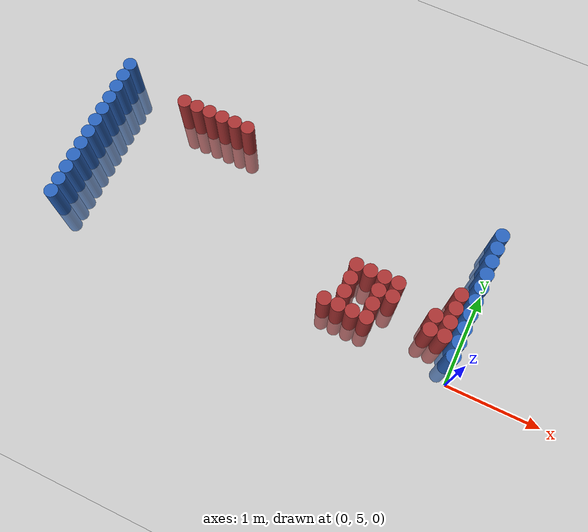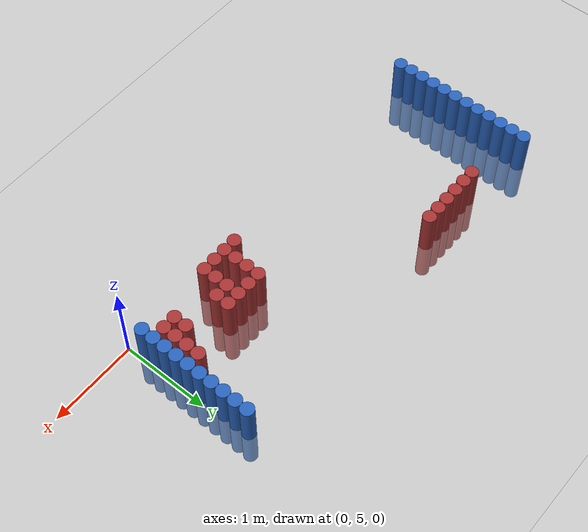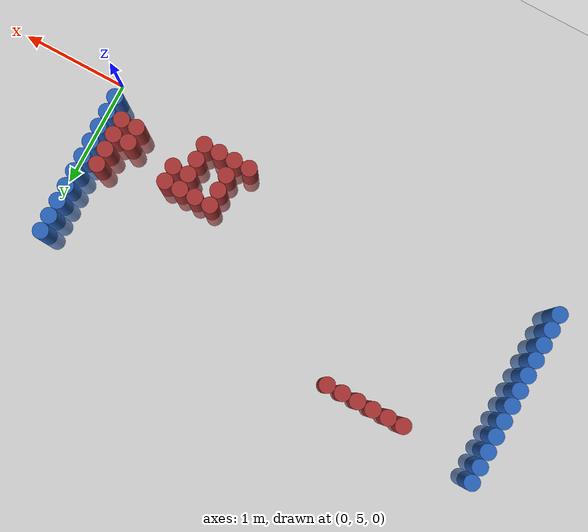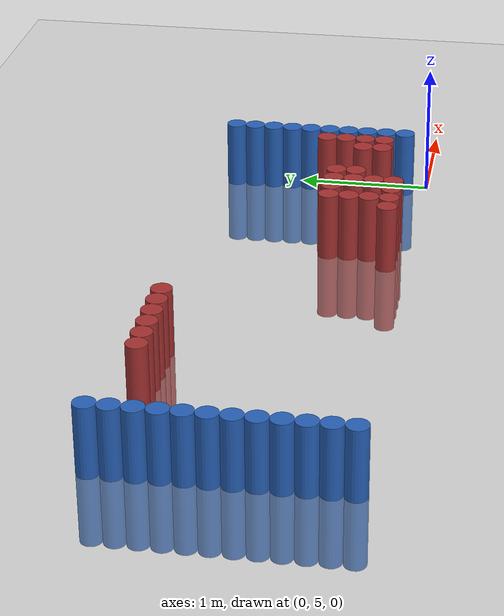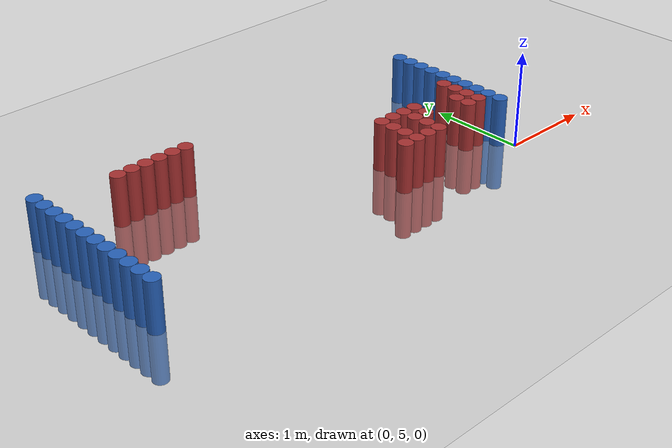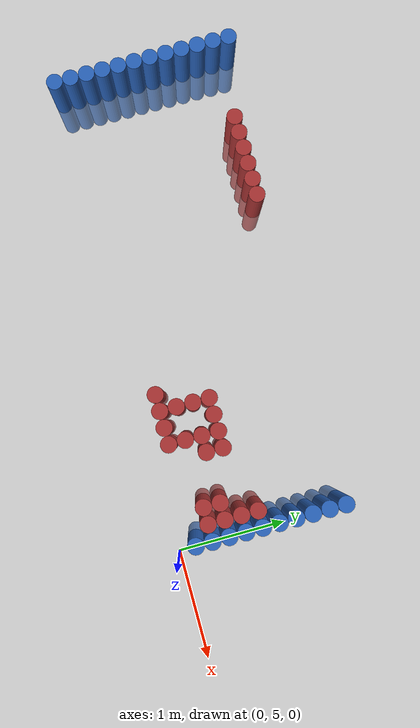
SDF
<sdf version="1.6">
 <world name="default">
  <model name="ground_plane">
   <static>1</static>
   <link name="link">
    <collision name="collision">
     <geometry><plane><normal>0 0 1</normal><size>100 100</size></plane></geometry>
     <surface><friction><ode><mu>100</mu><mu2>50</mu2></ode></friction></surface>
    </collision>
    <visual name="visual">
     <cast_shadows>0</cast_shadows>
     <geometry><plane><normal>0 0 1</normal><size>100 100</size></plane></geometry>
     <material>
      <script><uri>file://media/materials/scripts/gazebo.material</uri><name>Gazebo/Grey</name></script>
     </material>
    </visual>
   </link>
  </model>
  <model name="unit_cylinder_95">
   <static>1</static>
   <pose>-4.425000 5.025000 0.000000 0.000000 0.000000 0.000000</pose>
   <link name="link">
    <inertial>
     <mass>1</mass>
     <inertia><ixx>0.145833</ixx><ixy>0</ixy><ixz>0</ixz><iyy>0.145833</iyy><iyz>0</iyz><izz>0.125</izz></inertia>
    </inertial>
    <collision name="collision">
     <geometry><cylinder><radius>0.075000</radius><length>1</length></cylinder></geometry>
    </collision>
    <visual name="visual">
     <geometry><cylinder><radius>0.075000</radius><length>1</length></cylinder></geometry>
     <material>
      <ambient>0.152000 0.379000 0.720000 1</ambient>
      <diffuse>0.152000 0.379000 0.720000 1</diffuse>
     </material>
     <material>
      <script><name>Gazebo/Grey</name><uri>file://media/materials/scripts/gazebo.material</uri></script>
     </material>
    </visual>
   </link>
  </model>
  <model name="unit_cylinder_96">
   <static>1</static>
   <pose>-4.425000 5.175000 0.000000 0.000000 0.000000 0.000000</pose>
   <link name="link">
    <inertial>
     <mass>1</mass>
     <inertia><ixx>0.145833</ixx><ixy>0</ixy><ixz>0</ixz><iyy>0.145833</iyy><iyz>0</iyz><izz>0.125</izz></inertia>
    </inertial>
    <collision name="collision">
     <geometry><cylinder><radius>0.075000</radius><length>1</length></cylinder></geometry>
    </collision>
    <visual name="visual">
     <geometry><cylinder><radius>0.075000</radius><length>1</length></cylinder></geometry>
     <material>
      <ambient>0.152000 0.379000 0.720000 1</ambient>
      <diffuse>0.152000 0.379000 0.720000 1</diffuse>
     </material>
     <material>
      <script><name>Gazebo/Grey</name><uri>file://media/materials/scripts/gazebo.material</uri></script>
     </material>
    </visual>
   </link>
  </model>
  <model name="unit_cylinder_97">
   <static>1</static>
   <pose>-4.425000 5.325000 0.000000 0.000000 0.000000 0.000000</pose>
   <link name="link">
    <inertial>
     <mass>1</mass>
     <inertia><ixx>0.145833</ixx><ixy>0</ixy><ixz>0</ixz><iyy>0.145833</iyy><iyz>0</iyz><izz>0.125</izz></inertia>
    </inertial>
    <collision name="collision">
     <geometry><cylinder><radius>0.075000</radius><length>1</length></cylinder></geometry>
    </collision>
    <visual name="visual">
     <geometry><cylinder><radius>0.075000</radius><length>1</length></cylinder></geometry>
     <material>
      <ambient>0.152000 0.379000 0.720000 1</ambient>
      <diffuse>0.152000 0.379000 0.720000 1</diffuse>
     </material>
     <material>
      <script><name>Gazebo/Grey</name><uri>file://media/materials/scripts/gazebo.material</uri></script>
     </material>
    </visual>
   </link>
  </model>
  <model name="unit_cylinder_98">
   <static>1</static>
   <pose>-4.425000 5.475000 0.000000 0.000000 0.000000 0.000000</pose>
   <link name="link">
    <inertial>
     <mass>1</mass>
     <inertia><ixx>0.145833</ixx><ixy>0</ixy><ixz>0</ixz><iyy>0.145833</iyy><iyz>0</iyz><izz>0.125</izz></inertia>
    </inertial>
    <collision name="collision">
     <geometry><cylinder><radius>0.075000</radius><length>1</length></cylinder></geometry>
    </collision>
    <visual name="visual">
     <geometry><cylinder><radius>0.075000</radius><length>1</length></cylinder></geometry>
     <material>
      <ambient>0.152000 0.379000 0.720000 1</ambient>
      <diffuse>0.152000 0.379000 0.720000 1</diffuse>
     </material>
     <material>
      <script><name>Gazebo/Grey</name><uri>file://media/materials/scripts/gazebo.material</uri></script>
     </material>
    </visual>
   </link>
  </model>
  <model name="unit_cylinder_99">
   <static>1</static>
   <pose>-4.425000 5.625000 0.000000 0.000000 0.000000 0.000000</pose>
   <link name="link">
    <inertial>
     <mass>1</mass>
     <inertia><ixx>0.145833</ixx><ixy>0</ixy><ixz>0</ixz><iyy>0.145833</iyy><iyz>0</iyz><izz>0.125</izz></inertia>
    </inertial>
    <collision name="collision">
     <geometry><cylinder><radius>0.075000</radius><length>1</length></cylinder></geometry>
    </collision>
    <visual name="visual">
     <geometry><cylinder><radius>0.075000</radius><length>1</length></cylinder></geometry>
     <material>
      <ambient>0.152000 0.379000 0.720000 1</ambient>
      <diffuse>0.152000 0.379000 0.720000 1</diffuse>
     </material>
     <material>
      <script><name>Gazebo/Grey</name><uri>file://media/materials/scripts/gazebo.material</uri></script>
     </material>
    </visual>
   </link>
  </model>
  <model name="unit_cylinder_100">
   <static>1</static>
   <pose>-4.425000 5.775000 0.000000 0.000000 0.000000 0.000000</pose>
   <link name="link">
    <inertial>
     <mass>1</mass>
     <inertia><ixx>0.145833</ixx><ixy>0</ixy><ixz>0</ixz><iyy>0.145833</iyy><iyz>0</iyz><izz>0.125</izz></inertia>
    </inertial>
    <collision name="collision">
     <geometry><cylinder><radius>0.075000</radius><length>1</length></cylinder></geometry>
    </collision>
    <visual name="visual">
     <geometry><cylinder><radius>0.075000</radius><length>1</length></cylinder></geometry>
     <material>
      <ambient>0.152000 0.379000 0.720000 1</ambient>
      <diffuse>0.152000 0.379000 0.720000 1</diffuse>
     </material>
     <material>
      <script><name>Gazebo/Grey</name><uri>file://media/materials/scripts/gazebo.material</uri></script>
     </material>
    </visual>
   </link>
  </model>
  <model name="unit_cylinder_101">
   <static>1</static>
   <pose>-4.425000 5.925000 0.000000 0.000000 0.000000 0.000000</pose>
   <link name="link">
    <inertial>
     <mass>1</mass>
     <inertia><ixx>0.145833</ixx><ixy>0</ixy><ixz>0</ixz><iyy>0.145833</iyy><iyz>0</iyz><izz>0.125</izz></inertia>
    </inertial>
    <collision name="collision">
     <geometry><cylinder><radius>0.075000</radius><length>1</length></cylinder></geometry>
    </collision>
    <visual name="visual">
     <geometry><cylinder><radius>0.075000</radius><length>1</length></cylinder></geometry>
     <material>
      <ambient>0.152000 0.379000 0.720000 1</ambient>
      <diffuse>0.152000 0.379000 0.720000 1</diffuse>
     </material>
     <material>
      <script><name>Gazebo/Grey</name><uri>file://media/materials/scripts/gazebo.material</uri></script>
     </material>
    </visual>
   </link>
  </model>
  <model name="unit_cylinder_102">
   <static>1</static>
   <pose>-4.425000 6.075000 0.000000 0.000000 0.000000 0.000000</pose>
   <link name="link">
    <inertial>
     <mass>1</mass>
     <inertia><ixx>0.145833</ixx><ixy>0</ixy><ixz>0</ixz><iyy>0.145833</iyy><iyz>0</iyz><izz>0.125</izz></inertia>
    </inertial>
    <collision name="collision">
     <geometry><cylinder><radius>0.075000</radius><length>1</length></cylinder></geometry>
    </collision>
    <visual name="visual">
     <geometry><cylinder><radius>0.075000</radius><length>1</length></cylinder></geometry>
     <material>
      <ambient>0.152000 0.379000 0.720000 1</ambient>
      <diffuse>0.152000 0.379000 0.720000 1</diffuse>
     </material>
     <material>
      <script><name>Gazebo/Grey</name><uri>file://media/materials/scripts/gazebo.material</uri></script>
     </material>
    </visual>
   </link>
  </model>
  <model name="unit_cylinder_103">
   <static>1</static>
   <pose>-4.425000 6.225000 0.000000 0.000000 0.000000 0.000000</pose>
   <link name="link">
    <inertial>
     <mass>1</mass>
     <inertia><ixx>0.145833</ixx><ixy>0</ixy><ixz>0</ixz><iyy>0.145833</iyy><iyz>0</iyz><izz>0.125</izz></inertia>
    </inertial>
    <collision name="collision">
     <geometry><cylinder><radius>0.075000</radius><length>1</length></cylinder></geometry>
    </collision>
    <visual name="visual">
     <geometry><cylinder><radius>0.075000</radius><length>1</length></cylinder></geometry>
     <material>
      <ambient>0.152000 0.379000 0.720000 1</ambient>
      <diffuse>0.152000 0.379000 0.720000 1</diffuse>
     </material>
     <material>
      <script><name>Gazebo/Grey</name><uri>file://media/materials/scripts/gazebo.material</uri></script>
     </material>
    </visual>
   </link>
  </model>
  <model name="unit_cylinder_104">
   <static>1</static>
   <pose>-4.425000 6.375000 0.000000 0.000000 0.000000 0.000000</pose>
   <link name="link">
    <inertial>
     <mass>1</mass>
     <inertia><ixx>0.145833</ixx><ixy>0</ixy><ixz>0</ixz><iyy>0.145833</iyy><iyz>0</iyz><izz>0.125</izz></inertia>
    </inertial>
    <collision name="collision">
     <geometry><cylinder><radius>0.075000</radius><length>1</length></cylinder></geometry>
    </collision>
    <visual name="visual">
     <geometry><cylinder><radius>0.075000</radius><length>1</length></cylinder></geometry>
     <material>
      <ambient>0.152000 0.379000 0.720000 1</ambient>
      <diffuse>0.152000 0.379000 0.720000 1</diffuse>
     </material>
     <material>
      <script><name>Gazebo/Grey</name><uri>file://media/materials/scripts/gazebo.material</uri></script>
     </material>
    </visual>
   </link>
  </model>
  <model name="unit_cylinder_105">
   <static>1</static>
   <pose>-4.425000 6.525000 0.000000 0.000000 0.000000 0.000000</pose>
   <link name="link">
    <inertial>
     <mass>1</mass>
     <inertia><ixx>0.145833</ixx><ixy>0</ixy><ixz>0</ixz><iyy>0.145833</iyy><iyz>0</iyz><izz>0.125</izz></inertia>
    </inertial>
    <collision name="collision">
     <geometry><cylinder><radius>0.075000</radius><length>1</length></cylinder></geometry>
    </collision>
    <visual name="visual">
     <geometry><cylinder><radius>0.075000</radius><length>1</length></cylinder></geometry>
     <material>
      <ambient>0.152000 0.379000 0.720000 1</ambient>
      <diffuse>0.152000 0.379000 0.720000 1</diffuse>
     </material>
     <material>
      <script><name>Gazebo/Grey</name><uri>file://media/materials/scripts/gazebo.material</uri></script>
     </material>
    </visual>
   </link>
  </model>
  <model name="unit_cylinder_106">
   <static>1</static>
   <pose>-4.425000 6.675000 0.000000 0.000000 0.000000 0.000000</pose>
   <link name="link">
    <inertial>
     <mass>1</mass>
     <inertia><ixx>0.145833</ixx><ixy>0</ixy><ixz>0</ixz><iyy>0.145833</iyy><iyz>0</iyz><izz>0.125</izz></inertia>
    </inertial>
    <collision name="collision">
     <geometry><cylinder><radius>0.075000</radius><length>1</length></cylinder></geometry>
    </collision>
    <visual name="visual">
     <geometry><cylinder><radius>0.075000</radius><length>1</length></cylinder></geometry>
     <material>
      <ambient>0.152000 0.379000 0.720000 1</ambient>
      <diffuse>0.152000 0.379000 0.720000 1</diffuse>
     </material>
     <material>
      <script><name>Gazebo/Grey</name><uri>file://media/materials/scripts/gazebo.material</uri></script>
     </material>
    </visual>
   </link>
  </model>
  <model name="unit_cylinder_153">
   <static>1</static>
   <pose>-3.675000 6.525000 0.000000 0.000000 0.000000 0.000000</pose>
   <link name="link">
    <inertial>
     <mass>1</mass>
     <inertia><ixx>0.145833</ixx><ixy>0</ixy><ixz>0</ixz><iyy>0.145833</iyy><iyz>0</iyz><izz>0.125</izz></inertia>
    </inertial>
    <collision name="collision">
     <geometry><cylinder><radius>0.075000</radius><length>1</length></cylinder></geometry>
    </collision>
    <visual name="visual">
     <geometry><cylinder><radius>0.075000</radius><length>1</length></cylinder></geometry>
     <material>
      <ambient>0.648000 0.192000 0.192000 1</ambient>
      <diffuse>0.648000 0.192000 0.192000 1</diffuse>
     </material>
     <material>
      <script><name>Gazebo/Grey</name><uri>file://media/materials/scripts/gazebo.material</uri></script>
     </material>
    </visual>
   </link>
  </model>
  <model name="unit_cylinder_157">
   <static>1</static>
   <pose>-3.525000 6.525000 0.000000 0.000000 0.000000 0.000000</pose>
   <link name="link">
    <inertial>
     <mass>1</mass>
     <inertia><ixx>0.145833</ixx><ixy>0</ixy><ixz>0</ixz><iyy>0.145833</iyy><iyz>0</iyz><izz>0.125</izz></inertia>
    </inertial>
    <collision name="collision">
     <geometry><cylinder><radius>0.075000</radius><length>1</length></cylinder></geometry>
    </collision>
    <visual name="visual">
     <geometry><cylinder><radius>0.075000</radius><length>1</length></cylinder></geometry>
     <material>
      <ambient>0.648000 0.192000 0.192000 1</ambient>
      <diffuse>0.648000 0.192000 0.192000 1</diffuse>
     </material>
     <material>
      <script><name>Gazebo/Grey</name><uri>file://media/materials/scripts/gazebo.material</uri></script>
     </material>
    </visual>
   </link>
  </model>
  <model name="unit_cylinder_159">
   <static>1</static>
   <pose>-3.375000 6.525000 0.000000 0.000000 0.000000 0.000000</pose>
   <link name="link">
    <inertial>
     <mass>1</mass>
     <inertia><ixx>0.145833</ixx><ixy>0</ixy><ixz>0</ixz><iyy>0.145833</iyy><iyz>0</iyz><izz>0.125</izz></inertia>
    </inertial>
    <collision name="collision">
     <geometry><cylinder><radius>0.075000</radius><length>1</length></cylinder></geometry>
    </collision>
    <visual name="visual">
     <geometry><cylinder><radius>0.075000</radius><length>1</length></cylinder></geometry>
     <material>
      <ambient>0.648000 0.192000 0.192000 1</ambient>
      <diffuse>0.648000 0.192000 0.192000 1</diffuse>
     </material>
     <material>
      <script><name>Gazebo/Grey</name><uri>file://media/materials/scripts/gazebo.material</uri></script>
     </material>
    </visual>
   </link>
  </model>
  <model name="unit_cylinder_161">
   <static>1</static>
   <pose>-3.225000 6.525000 0.000000 0.000000 0.000000 0.000000</pose>
   <link name="link">
    <inertial>
     <mass>1</mass>
     <inertia><ixx>0.145833</ixx><ixy>0</ixy><ixz>0</ixz><iyy>0.145833</iyy><iyz>0</iyz><izz>0.125</izz></inertia>
    </inertial>
    <collision name="collision">
     <geometry><cylinder><radius>0.075000</radius><length>1</length></cylinder></geometry>
    </collision>
    <visual name="visual">
     <geometry><cylinder><radius>0.075000</radius><length>1</length></cylinder></geometry>
     <material>
      <ambient>0.648000 0.192000 0.192000 1</ambient>
      <diffuse>0.648000 0.192000 0.192000 1</diffuse>
     </material>
     <material>
      <script><name>Gazebo/Grey</name><uri>file://media/materials/scripts/gazebo.material</uri></script>
     </material>
    </visual>
   </link>
  </model>
  <model name="unit_cylinder_163">
   <static>1</static>
   <pose>-3.075000 6.525000 0.000000 0.000000 0.000000 0.000000</pose>
   <link name="link">
    <inertial>
     <mass>1</mass>
     <inertia><ixx>0.145833</ixx><ixy>0</ixy><ixz>0</ixz><iyy>0.145833</iyy><iyz>0</iyz><izz>0.125</izz></inertia>
    </inertial>
    <collision name="collision">
     <geometry><cylinder><radius>0.075000</radius><length>1</length></cylinder></geometry>
    </collision>
    <visual name="visual">
     <geometry><cylinder><radius>0.075000</radius><length>1</length></cylinder></geometry>
     <material>
      <ambient>0.648000 0.192000 0.192000 1</ambient>
      <diffuse>0.648000 0.192000 0.192000 1</diffuse>
     </material>
     <material>
      <script><name>Gazebo/Grey</name><uri>file://media/materials/scripts/gazebo.material</uri></script>
     </material>
    </visual>
   </link>
  </model>
  <model name="unit_cylinder_172">
   <static>1</static>
   <pose>-2.925000 6.525000 0.000000 0.000000 0.000000 0.000000</pose>
   <link name="link">
    <inertial>
     <mass>1</mass>
     <inertia><ixx>0.145833</ixx><ixy>0</ixy><ixz>0</ixz><iyy>0.145833</iyy><iyz>0</iyz><izz>0.125</izz></inertia>
    </inertial>
    <collision name="collision">
     <geometry><cylinder><radius>0.075000</radius><length>1</length></cylinder></geometry>
    </collision>
    <visual name="visual">
     <geometry><cylinder><radius>0.075000</radius><length>1</length></cylinder></geometry>
     <material>
      <ambient>0.648000 0.192000 0.192000 1</ambient>
      <diffuse>0.648000 0.192000 0.192000 1</diffuse>
     </material>
     <material>
      <script><name>Gazebo/Grey</name><uri>file://media/materials/scripts/gazebo.material</uri></script>
     </material>
    </visual>
   </link>
  </model>
  <model name="unit_cylinder_201">
   <static>1</static>
   <pose>-1.425000 5.175000 0.000000 0.000000 0.000000 0.000000</pose>
   <link name="link">
    <inertial>
     <mass>1</mass>
     <inertia><ixx>0.145833</ixx><ixy>0</ixy><ixz>0</ixz><iyy>0.145833</iyy><iyz>0</iyz><izz>0.125</izz></inertia>
    </inertial>
    <collision name="collision">
     <geometry><cylinder><radius>0.075000</radius><length>1</length></cylinder></geometry>
    </collision>
    <visual name="visual">
     <geometry><cylinder><radius>0.075000</radius><length>1</length></cylinder></geometry>
     <material>
      <ambient>0.648000 0.192000 0.192000 1</ambient>
      <diffuse>0.648000 0.192000 0.192000 1</diffuse>
     </material>
     <material>
      <script><name>Gazebo/Grey</name><uri>file://media/materials/scripts/gazebo.material</uri></script>
     </material>
    </visual>
   </link>
  </model>
  <model name="unit_cylinder_203">
   <static>1</static>
   <pose>-1.275000 5.175000 0.000000 0.000000 0.000000 0.000000</pose>
   <link name="link">
    <inertial>
     <mass>1</mass>
     <inertia><ixx>0.145833</ixx><ixy>0</ixy><ixz>0</ixz><iyy>0.145833</iyy><iyz>0</iyz><izz>0.125</izz></inertia>
    </inertial>
    <collision name="collision">
     <geometry><cylinder><radius>0.075000</radius><length>1</length></cylinder></geometry>
    </collision>
    <visual name="visual">
     <geometry><cylinder><radius>0.075000</radius><length>1</length></cylinder></geometry>
     <material>
      <ambient>0.648000 0.192000 0.192000 1</ambient>
      <diffuse>0.648000 0.192000 0.192000 1</diffuse>
     </material>
     <material>
      <script><name>Gazebo/Grey</name><uri>file://media/materials/scripts/gazebo.material</uri></script>
     </material>
    </visual>
   </link>
  </model>
  <model name="unit_cylinder_204">
   <static>1</static>
   <pose>-1.275000 5.325000 0.000000 0.000000 0.000000 0.000000</pose>
   <link name="link">
    <inertial>
     <mass>1</mass>
     <inertia><ixx>0.145833</ixx><ixy>0</ixy><ixz>0</ixz><iyy>0.145833</iyy><iyz>0</iyz><izz>0.125</izz></inertia>
    </inertial>
    <collision name="collision">
     <geometry><cylinder><radius>0.075000</radius><length>1</length></cylinder></geometry>
    </collision>
    <visual name="visual">
     <geometry><cylinder><radius>0.075000</radius><length>1</length></cylinder></geometry>
     <material>
      <ambient>0.648000 0.192000 0.192000 1</ambient>
      <diffuse>0.648000 0.192000 0.192000 1</diffuse>
     </material>
     <material>
      <script><name>Gazebo/Grey</name><uri>file://media/materials/scripts/gazebo.material</uri></script>
     </material>
    </visual>
   </link>
  </model>
  <model name="unit_cylinder_205">
   <static>1</static>
   <pose>-1.275000 5.475000 0.000000 0.000000 0.000000 0.000000</pose>
   <link name="link">
    <inertial>
     <mass>1</mass>
     <inertia><ixx>0.145833</ixx><ixy>0</ixy><ixz>0</ixz><iyy>0.145833</iyy><iyz>0</iyz><izz>0.125</izz></inertia>
    </inertial>
    <collision name="collision">
     <geometry><cylinder><radius>0.075000</radius><length>1</length></cylinder></geometry>
    </collision>
    <visual name="visual">
     <geometry><cylinder><radius>0.075000</radius><length>1</length></cylinder></geometry>
     <material>
      <ambient>0.648000 0.192000 0.192000 1</ambient>
      <diffuse>0.648000 0.192000 0.192000 1</diffuse>
     </material>
     <material>
      <script><name>Gazebo/Grey</name><uri>file://media/materials/scripts/gazebo.material</uri></script>
     </material>
    </visual>
   </link>
  </model>
  <model name="unit_cylinder_206">
   <static>1</static>
   <pose>-1.275000 5.625000 0.000000 0.000000 0.000000 0.000000</pose>
   <link name="link">
    <inertial>
     <mass>1</mass>
     <inertia><ixx>0.145833</ixx><ixy>0</ixy><ixz>0</ixz><iyy>0.145833</iyy><iyz>0</iyz><izz>0.125</izz></inertia>
    </inertial>
    <collision name="collision">
     <geometry><cylinder><radius>0.075000</radius><length>1</length></cylinder></geometry>
    </collision>
    <visual name="visual">
     <geometry><cylinder><radius>0.075000</radius><length>1</length></cylinder></geometry>
     <material>
      <ambient>0.648000 0.192000 0.192000 1</ambient>
      <diffuse>0.648000 0.192000 0.192000 1</diffuse>
     </material>
     <material>
      <script><name>Gazebo/Grey</name><uri>file://media/materials/scripts/gazebo.material</uri></script>
     </material>
    </visual>
   </link>
  </model>
  <model name="unit_cylinder_214">
   <static>1</static>
   <pose>-1.125000 5.175000 0.000000 0.000000 0.000000 0.000000</pose>
   <link name="link">
    <inertial>
     <mass>1</mass>
     <inertia><ixx>0.145833</ixx><ixy>0</ixy><ixz>0</ixz><iyy>0.145833</iyy><iyz>0</iyz><izz>0.125</izz></inertia>
    </inertial>
    <collision name="collision">
     <geometry><cylinder><radius>0.075000</radius><length>1</length></cylinder></geometry>
    </collision>
    <visual name="visual">
     <geometry><cylinder><radius>0.075000</radius><length>1</length></cylinder></geometry>
     <material>
      <ambient>0.648000 0.192000 0.192000 1</ambient>
      <diffuse>0.648000 0.192000 0.192000 1</diffuse>
     </material>
     <material>
      <script><name>Gazebo/Grey</name><uri>file://media/materials/scripts/gazebo.material</uri></script>
     </material>
    </visual>
   </link>
  </model>
  <model name="unit_cylinder_215">
   <static>1</static>
   <pose>-1.125000 5.625000 0.000000 0.000000 0.000000 0.000000</pose>
   <link name="link">
    <inertial>
     <mass>1</mass>
     <inertia><ixx>0.145833</ixx><ixy>0</ixy><ixz>0</ixz><iyy>0.145833</iyy><iyz>0</iyz><izz>0.125</izz></inertia>
    </inertial>
    <collision name="collision">
     <geometry><cylinder><radius>0.075000</radius><length>1</length></cylinder></geometry>
    </collision>
    <visual name="visual">
     <geometry><cylinder><radius>0.075000</radius><length>1</length></cylinder></geometry>
     <material>
      <ambient>0.648000 0.192000 0.192000 1</ambient>
      <diffuse>0.648000 0.192000 0.192000 1</diffuse>
     </material>
     <material>
      <script><name>Gazebo/Grey</name><uri>file://media/materials/scripts/gazebo.material</uri></script>
     </material>
    </visual>
   </link>
  </model>
  <model name="unit_cylinder_219">
   <static>1</static>
   <pose>-0.975000 5.175000 0.000000 0.000000 0.000000 0.000000</pose>
   <link name="link">
    <inertial>
     <mass>1</mass>
     <inertia><ixx>0.145833</ixx><ixy>0</ixy><ixz>0</ixz><iyy>0.145833</iyy><iyz>0</iyz><izz>0.125</izz></inertia>
    </inertial>
    <collision name="collision">
     <geometry><cylinder><radius>0.075000</radius><length>1</length></cylinder></geometry>
    </collision>
    <visual name="visual">
     <geometry><cylinder><radius>0.075000</radius><length>1</length></cylinder></geometry>
     <material>
      <ambient>0.648000 0.192000 0.192000 1</ambient>
      <diffuse>0.648000 0.192000 0.192000 1</diffuse>
     </material>
     <material>
      <script><name>Gazebo/Grey</name><uri>file://media/materials/scripts/gazebo.material</uri></script>
     </material>
    </visual>
   </link>
  </model>
  <model name="unit_cylinder_220">
   <static>1</static>
   <pose>-0.975000 5.325000 0.000000 0.000000 0.000000 0.000000</pose>
   <link name="link">
    <inertial>
     <mass>1</mass>
     <inertia><ixx>0.145833</ixx><ixy>0</ixy><ixz>0</ixz><iyy>0.145833</iyy><iyz>0</iyz><izz>0.125</izz></inertia>
    </inertial>
    <collision name="collision">
     <geometry><cylinder><radius>0.075000</radius><length>1</length></cylinder></geometry>
    </collision>
    <visual name="visual">
     <geometry><cylinder><radius>0.075000</radius><length>1</length></cylinder></geometry>
     <material>
      <ambient>0.648000 0.192000 0.192000 1</ambient>
      <diffuse>0.648000 0.192000 0.192000 1</diffuse>
     </material>
     <material>
      <script><name>Gazebo/Grey</name><uri>file://media/materials/scripts/gazebo.material</uri></script>
     </material>
    </visual>
   </link>
  </model>
  <model name="unit_cylinder_221">
   <static>1</static>
   <pose>-0.975000 5.475000 0.000000 0.000000 0.000000 0.000000</pose>
   <link name="link">
    <inertial>
     <mass>1</mass>
     <inertia><ixx>0.145833</ixx><ixy>0</ixy><ixz>0</ixz><iyy>0.145833</iyy><iyz>0</iyz><izz>0.125</izz></inertia>
    </inertial>
    <collision name="collision">
     <geometry><cylinder><radius>0.075000</radius><length>1</length></cylinder></geometry>
    </collision>
    <visual name="visual">
     <geometry><cylinder><radius>0.075000</radius><length>1</length></cylinder></geometry>
     <material>
      <ambient>0.648000 0.192000 0.192000 1</ambient>
      <diffuse>0.648000 0.192000 0.192000 1</diffuse>
     </material>
     <material>
      <script><name>Gazebo/Grey</name><uri>file://media/materials/scripts/gazebo.material</uri></script>
     </material>
    </visual>
   </link>
  </model>
  <model name="unit_cylinder_222">
   <static>1</static>
   <pose>-0.975000 5.625000 0.000000 0.000000 0.000000 0.000000</pose>
   <link name="link">
    <inertial>
     <mass>1</mass>
     <inertia><ixx>0.145833</ixx><ixy>0</ixy><ixz>0</ixz><iyy>0.145833</iyy><iyz>0</iyz><izz>0.125</izz></inertia>
    </inertial>
    <collision name="collision">
     <geometry><cylinder><radius>0.075000</radius><length>1</length></cylinder></geometry>
    </collision>
    <visual name="visual">
     <geometry><cylinder><radius>0.075000</radius><length>1</length></cylinder></geometry>
     <material>
      <ambient>0.648000 0.192000 0.192000 1</ambient>
      <diffuse>0.648000 0.192000 0.192000 1</diffuse>
     </material>
     <material>
      <script><name>Gazebo/Grey</name><uri>file://media/materials/scripts/gazebo.material</uri></script>
     </material>
    </visual>
   </link>
  </model>
  <model name="unit_cylinder_225">
   <static>1</static>
   <pose>-0.825000 5.475000 0.000000 0.000000 0.000000 0.000000</pose>
   <link name="link">
    <inertial>
     <mass>1</mass>
     <inertia><ixx>0.145833</ixx><ixy>0</ixy><ixz>0</ixz><iyy>0.145833</iyy><iyz>0</iyz><izz>0.125</izz></inertia>
    </inertial>
    <collision name="collision">
     <geometry><cylinder><radius>0.075000</radius><length>1</length></cylinder></geometry>
    </collision>
    <visual name="visual">
     <geometry><cylinder><radius>0.075000</radius><length>1</length></cylinder></geometry>
     <material>
      <ambient>0.648000 0.192000 0.192000 1</ambient>
      <diffuse>0.648000 0.192000 0.192000 1</diffuse>
     </material>
     <material>
      <script><name>Gazebo/Grey</name><uri>file://media/materials/scripts/gazebo.material</uri></script>
     </material>
    </visual>
   </link>
  </model>
  <model name="unit_cylinder_226">
   <static>1</static>
   <pose>-0.825000 5.625000 0.000000 0.000000 0.000000 0.000000</pose>
   <link name="link">
    <inertial>
     <mass>1</mass>
     <inertia><ixx>0.145833</ixx><ixy>0</ixy><ixz>0</ixz><iyy>0.145833</iyy><iyz>0</iyz><izz>0.125</izz></inertia>
    </inertial>
    <collision name="collision">
     <geometry><cylinder><radius>0.075000</radius><length>1</length></cylinder></geometry>
    </collision>
    <visual name="visual">
     <geometry><cylinder><radius>0.075000</radius><length>1</length></cylinder></geometry>
     <material>
      <ambient>0.648000 0.192000 0.192000 1</ambient>
      <diffuse>0.648000 0.192000 0.192000 1</diffuse>
     </material>
     <material>
      <script><name>Gazebo/Grey</name><uri>file://media/materials/scripts/gazebo.material</uri></script>
     </material>
    </visual>
   </link>
  </model>
  <model name="unit_cylinder_235">
   <static>1</static>
   <pose>-0.375000 5.325000 0.000000 0.000000 0.000000 0.000000</pose>
   <link name="link">
    <inertial>
     <mass>1</mass>
     <inertia><ixx>0.145833</ixx><ixy>0</ixy><ixz>0</ixz><iyy>0.145833</iyy><iyz>0</iyz><izz>0.125</izz></inertia>
    </inertial>
    <collision name="collision">
     <geometry><cylinder><radius>0.075000</radius><length>1</length></cylinder></geometry>
    </collision>
    <visual name="visual">
     <geometry><cylinder><radius>0.075000</radius><length>1</length></cylinder></geometry>
     <material>
      <ambient>0.648000 0.192000 0.192000 1</ambient>
      <diffuse>0.648000 0.192000 0.192000 1</diffuse>
     </material>
     <material>
      <script><name>Gazebo/Grey</name><uri>file://media/materials/scripts/gazebo.material</uri></script>
     </material>
    </visual>
   </link>
  </model>
  <model name="unit_cylinder_236">
   <static>1</static>
   <pose>-0.375000 5.475000 0.000000 0.000000 0.000000 0.000000</pose>
   <link name="link">
    <inertial>
     <mass>1</mass>
     <inertia><ixx>0.145833</ixx><ixy>0</ixy><ixz>0</ixz><iyy>0.145833</iyy><iyz>0</iyz><izz>0.125</izz></inertia>
    </inertial>
    <collision name="collision">
     <geometry><cylinder><radius>0.075000</radius><length>1</length></cylinder></geometry>
    </collision>
    <visual name="visual">
     <geometry><cylinder><radius>0.075000</radius><length>1</length></cylinder></geometry>
     <material>
      <ambient>0.648000 0.192000 0.192000 1</ambient>
      <diffuse>0.648000 0.192000 0.192000 1</diffuse>
     </material>
     <material>
      <script><name>Gazebo/Grey</name><uri>file://media/materials/scripts/gazebo.material</uri></script>
     </material>
    </visual>
   </link>
  </model>
  <model name="unit_cylinder_244">
   <static>1</static>
   <pose>-0.225000 5.325000 0.000000 0.000000 0.000000 0.000000</pose>
   <link name="link">
    <inertial>
     <mass>1</mass>
     <inertia><ixx>0.145833</ixx><ixy>0</ixy><ixz>0</ixz><iyy>0.145833</iyy><iyz>0</iyz><izz>0.125</izz></inertia>
    </inertial>
    <collision name="collision">
     <geometry><cylinder><radius>0.075000</radius><length>1</length></cylinder></geometry>
    </collision>
    <visual name="visual">
     <geometry><cylinder><radius>0.075000</radius><length>1</length></cylinder></geometry>
     <material>
      <ambient>0.648000 0.192000 0.192000 1</ambient>
      <diffuse>0.648000 0.192000 0.192000 1</diffuse>
     </material>
     <material>
      <script><name>Gazebo/Grey</name><uri>file://media/materials/scripts/gazebo.material</uri></script>
     </material>
    </visual>
   </link>
  </model>
  <model name="unit_cylinder_245">
   <static>1</static>
   <pose>-0.225000 5.475000 0.000000 0.000000 0.000000 0.000000</pose>
   <link name="link">
    <inertial>
     <mass>1</mass>
     <inertia><ixx>0.145833</ixx><ixy>0</ixy><ixz>0</ixz><iyy>0.145833</iyy><iyz>0</iyz><izz>0.125</izz></inertia>
    </inertial>
    <collision name="collision">
     <geometry><cylinder><radius>0.075000</radius><length>1</length></cylinder></geometry>
    </collision>
    <visual name="visual">
     <geometry><cylinder><radius>0.075000</radius><length>1</length></cylinder></geometry>
     <material>
      <ambient>0.648000 0.192000 0.192000 1</ambient>
      <diffuse>0.648000 0.192000 0.192000 1</diffuse>
     </material>
     <material>
      <script><name>Gazebo/Grey</name><uri>file://media/materials/scripts/gazebo.material</uri></script>
     </material>
    </visual>
   </link>
  </model>
  <model name="unit_cylinder_246">
   <static>1</static>
   <pose>-0.225000 5.625000 0.000000 0.000000 0.000000 0.000000</pose>
   <link name="link">
    <inertial>
     <mass>1</mass>
     <inertia><ixx>0.145833</ixx><ixy>0</ixy><ixz>0</ixz><iyy>0.145833</iyy><iyz>0</iyz><izz>0.125</izz></inertia>
    </inertial>
    <collision name="collision">
     <geometry><cylinder><radius>0.075000</radius><length>1</length></cylinder></geometry>
    </collision>
    <visual name="visual">
     <geometry><cylinder><radius>0.075000</radius><length>1</length></cylinder></geometry>
     <material>
      <ambient>0.648000 0.192000 0.192000 1</ambient>
      <diffuse>0.648000 0.192000 0.192000 1</diffuse>
     </material>
     <material>
      <script><name>Gazebo/Grey</name><uri>file://media/materials/scripts/gazebo.material</uri></script>
     </material>
    </visual>
   </link>
  </model>
  <model name="unit_cylinder_247">
   <static>1</static>
   <pose>-0.225000 5.775000 0.000000 0.000000 0.000000 0.000000</pose>
   <link name="link">
    <inertial>
     <mass>1</mass>
     <inertia><ixx>0.145833</ixx><ixy>0</ixy><ixz>0</ixz><iyy>0.145833</iyy><iyz>0</iyz><izz>0.125</izz></inertia>
    </inertial>
    <collision name="collision">
     <geometry><cylinder><radius>0.075000</radius><length>1</length></cylinder></geometry>
    </collision>
    <visual name="visual">
     <geometry><cylinder><radius>0.075000</radius><length>1</length></cylinder></geometry>
     <material>
      <ambient>0.648000 0.192000 0.192000 1</ambient>
      <diffuse>0.648000 0.192000 0.192000 1</diffuse>
     </material>
     <material>
      <script><name>Gazebo/Grey</name><uri>file://media/materials/scripts/gazebo.material</uri></script>
     </material>
    </visual>
   </link>
  </model>
  <model name="unit_cylinder_254">
   <static>1</static>
   <pose>-0.075000 5.175000 0.000000 0.000000 0.000000 0.000000</pose>
   <link name="link">
    <inertial>
     <mass>1</mass>
     <inertia><ixx>0.145833</ixx><ixy>0</ixy><ixz>0</ixz><iyy>0.145833</iyy><iyz>0</iyz><izz>0.125</izz></inertia>
    </inertial>
    <collision name="collision">
     <geometry><cylinder><radius>0.075000</radius><length>1</length></cylinder></geometry>
    </collision>
    <visual name="visual">
     <geometry><cylinder><radius>0.075000</radius><length>1</length></cylinder></geometry>
     <material>
      <ambient>0.152000 0.379000 0.720000 1</ambient>
      <diffuse>0.152000 0.379000 0.720000 1</diffuse>
     </material>
     <material>
      <script><name>Gazebo/Grey</name><uri>file://media/materials/scripts/gazebo.material</uri></script>
     </material>
    </visual>
   </link>
  </model>
  <model name="unit_cylinder_255">
   <static>1</static>
   <pose>-0.075000 5.325000 0.000000 0.000000 0.000000 0.000000</pose>
   <link name="link">
    <inertial>
     <mass>1</mass>
     <inertia><ixx>0.145833</ixx><ixy>0</ixy><ixz>0</ixz><iyy>0.145833</iyy><iyz>0</iyz><izz>0.125</izz></inertia>
    </inertial>
    <collision name="collision">
     <geometry><cylinder><radius>0.075000</radius><length>1</length></cylinder></geometry>
    </collision>
    <visual name="visual">
     <geometry><cylinder><radius>0.075000</radius><length>1</length></cylinder></geometry>
     <material>
      <ambient>0.152000 0.379000 0.720000 1</ambient>
      <diffuse>0.152000 0.379000 0.720000 1</diffuse>
     </material>
     <material>
      <script><name>Gazebo/Grey</name><uri>file://media/materials/scripts/gazebo.material</uri></script>
     </material>
    </visual>
   </link>
  </model>
  <model name="unit_cylinder_256">
   <static>1</static>
   <pose>-0.075000 5.475000 0.000000 0.000000 0.000000 0.000000</pose>
   <link name="link">
    <inertial>
     <mass>1</mass>
     <inertia><ixx>0.145833</ixx><ixy>0</ixy><ixz>0</ixz><iyy>0.145833</iyy><iyz>0</iyz><izz>0.125</izz></inertia>
    </inertial>
    <collision name="collision">
     <geometry><cylinder><radius>0.075000</radius><length>1</length></cylinder></geometry>
    </collision>
    <visual name="visual">
     <geometry><cylinder><radius>0.075000</radius><length>1</length></cylinder></geometry>
     <material>
      <ambient>0.152000 0.379000 0.720000 1</ambient>
      <diffuse>0.152000 0.379000 0.720000 1</diffuse>
     </material>
     <material>
      <script><name>Gazebo/Grey</name><uri>file://media/materials/scripts/gazebo.material</uri></script>
     </material>
    </visual>
   </link>
  </model>
  <model name="unit_cylinder_257">
   <static>1</static>
   <pose>-0.075000 5.625000 0.000000 0.000000 0.000000 0.000000</pose>
   <link name="link">
    <inertial>
     <mass>1</mass>
     <inertia><ixx>0.145833</ixx><ixy>0</ixy><ixz>0</ixz><iyy>0.145833</iyy><iyz>0</iyz><izz>0.125</izz></inertia>
    </inertial>
    <collision name="collision">
     <geometry><cylinder><radius>0.075000</radius><length>1</length></cylinder></geometry>
    </collision>
    <visual name="visual">
     <geometry><cylinder><radius>0.075000</radius><length>1</length></cylinder></geometry>
     <material>
      <ambient>0.152000 0.379000 0.720000 1</ambient>
      <diffuse>0.152000 0.379000 0.720000 1</diffuse>
     </material>
     <material>
      <script><name>Gazebo/Grey</name><uri>file://media/materials/scripts/gazebo.material</uri></script>
     </material>
    </visual>
   </link>
  </model>
  <model name="unit_cylinder_258">
   <static>1</static>
   <pose>-0.075000 5.775000 0.000000 0.000000 0.000000 0.000000</pose>
   <link name="link">
    <inertial>
     <mass>1</mass>
     <inertia><ixx>0.145833</ixx><ixy>0</ixy><ixz>0</ixz><iyy>0.145833</iyy><iyz>0</iyz><izz>0.125</izz></inertia>
    </inertial>
    <collision name="collision">
     <geometry><cylinder><radius>0.075000</radius><length>1</length></cylinder></geometry>
    </collision>
    <visual name="visual">
     <geometry><cylinder><radius>0.075000</radius><length>1</length></cylinder></geometry>
     <material>
      <ambient>0.152000 0.379000 0.720000 1</ambient>
      <diffuse>0.152000 0.379000 0.720000 1</diffuse>
     </material>
     <material>
      <script><name>Gazebo/Grey</name><uri>file://media/materials/scripts/gazebo.material</uri></script>
     </material>
    </visual>
   </link>
  </model>
  <model name="unit_cylinder_259">
   <static>1</static>
   <pose>-0.075000 5.925000 0.000000 0.000000 0.000000 0.000000</pose>
   <link name="link">
    <inertial>
     <mass>1</mass>
     <inertia><ixx>0.145833</ixx><ixy>0</ixy><ixz>0</ixz><iyy>0.145833</iyy><iyz>0</iyz><izz>0.125</izz></inertia>
    </inertial>
    <collision name="collision">
     <geometry><cylinder><radius>0.075000</radius><length>1</length></cylinder></geometry>
    </collision>
    <visual name="visual">
     <geometry><cylinder><radius>0.075000</radius><length>1</length></cylinder></geometry>
     <material>
      <ambient>0.152000 0.379000 0.720000 1</ambient>
      <diffuse>0.152000 0.379000 0.720000 1</diffuse>
     </material>
     <material>
      <script><name>Gazebo/Grey</name><uri>file://media/materials/scripts/gazebo.material</uri></script>
     </material>
    </visual>
   </link>
  </model>
  <model name="unit_cylinder_260">
   <static>1</static>
   <pose>-0.075000 6.075000 0.000000 0.000000 0.000000 0.000000</pose>
   <link name="link">
    <inertial>
     <mass>1</mass>
     <inertia><ixx>0.145833</ixx><ixy>0</ixy><ixz>0</ixz><iyy>0.145833</iyy><iyz>0</iyz><izz>0.125</izz></inertia>
    </inertial>
    <collision name="collision">
     <geometry><cylinder><radius>0.075000</radius><length>1</length></cylinder></geometry>
    </collision>
    <visual name="visual">
     <geometry><cylinder><radius>0.075000</radius><length>1</length></cylinder></geometry>
     <material>
      <ambient>0.152000 0.379000 0.720000 1</ambient>
      <diffuse>0.152000 0.379000 0.720000 1</diffuse>
     </material>
     <material>
      <script><name>Gazebo/Grey</name><uri>file://media/materials/scripts/gazebo.material</uri></script>
     </material>
    </visual>
   </link>
  </model>
  <model name="unit_cylinder_261">
   <static>1</static>
   <pose>-0.075000 6.225000 0.000000 0.000000 0.000000 0.000000</pose>
   <link name="link">
    <inertial>
     <mass>1</mass>
     <inertia><ixx>0.145833</ixx><ixy>0</ixy><ixz>0</ixz><iyy>0.145833</iyy><iyz>0</iyz><izz>0.125</izz></inertia>
    </inertial>
    <collision name="collision">
     <geometry><cylinder><radius>0.075000</radius><length>1</length></cylinder></geometry>
    </collision>
    <visual name="visual">
     <geometry><cylinder><radius>0.075000</radius><length>1</length></cylinder></geometry>
     <material>
      <ambient>0.152000 0.379000 0.720000 1</ambient>
      <diffuse>0.152000 0.379000 0.720000 1</diffuse>
     </material>
     <material>
      <script><name>Gazebo/Grey</name><uri>file://media/materials/scripts/gazebo.material</uri></script>
     </material>
    </visual>
   </link>
  </model>
  <model name="unit_cylinder_262">
   <static>1</static>
   <pose>-0.075000 6.375000 0.000000 0.000000 0.000000 0.000000</pose>
   <link name="link">
    <inertial>
     <mass>1</mass>
     <inertia><ixx>0.145833</ixx><ixy>0</ixy><ixz>0</ixz><iyy>0.145833</iyy><iyz>0</iyz><izz>0.125</izz></inertia>
    </inertial>
    <collision name="collision">
     <geometry><cylinder><radius>0.075000</radius><length>1</length></cylinder></geometry>
    </collision>
    <visual name="visual">
     <geometry><cylinder><radius>0.075000</radius><length>1</length></cylinder></geometry>
     <material>
      <ambient>0.152000 0.379000 0.720000 1</ambient>
      <diffuse>0.152000 0.379000 0.720000 1</diffuse>
     </material>
     <material>
      <script><name>Gazebo/Grey</name><uri>file://media/materials/scripts/gazebo.material</uri></script>
     </material>
    </visual>
   </link>
  </model>
  <model name="unit_cylinder_263">
   <static>1</static>
   <pose>-0.075000 6.525000 0.000000 0.000000 0.000000 0.000000</pose>
   <link name="link">
    <inertial>
     <mass>1</mass>
     <inertia><ixx>0.145833</ixx><ixy>0</ixy><ixz>0</ixz><iyy>0.145833</iyy><iyz>0</iyz><izz>0.125</izz></inertia>
    </inertial>
    <collision name="collision">
     <geometry><cylinder><radius>0.075000</radius><length>1</length></cylinder></geometry>
    </collision>
    <visual name="visual">
     <geometry><cylinder><radius>0.075000</radius><length>1</length></cylinder></geometry>
     <material>
      <ambient>0.152000 0.379000 0.720000 1</ambient>
      <diffuse>0.152000 0.379000 0.720000 1</diffuse>
     </material>
     <material>
      <script><name>Gazebo/Grey</name><uri>file://media/materials/scripts/gazebo.material</uri></script>
     </material>
    </visual>
   </link>
  </model>
 </world>
</sdf>
